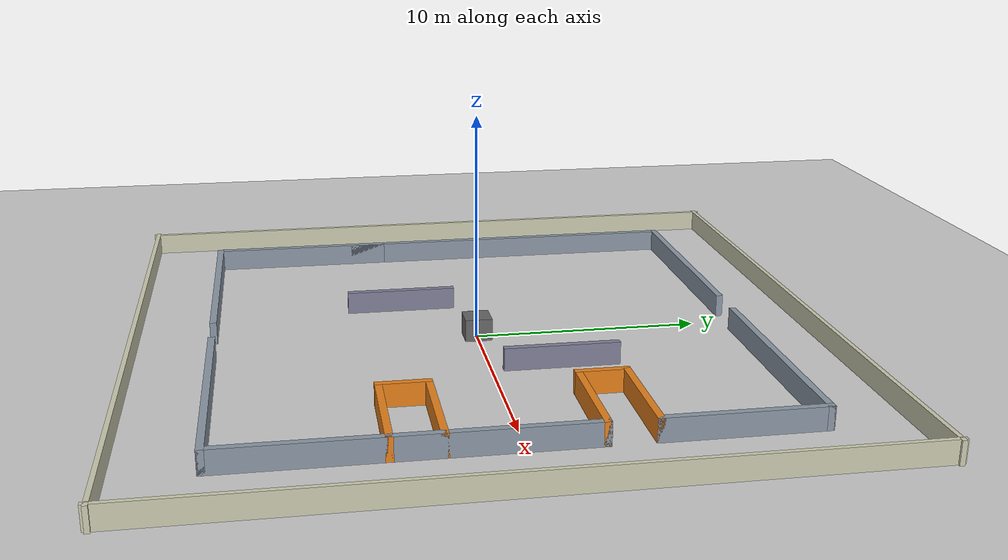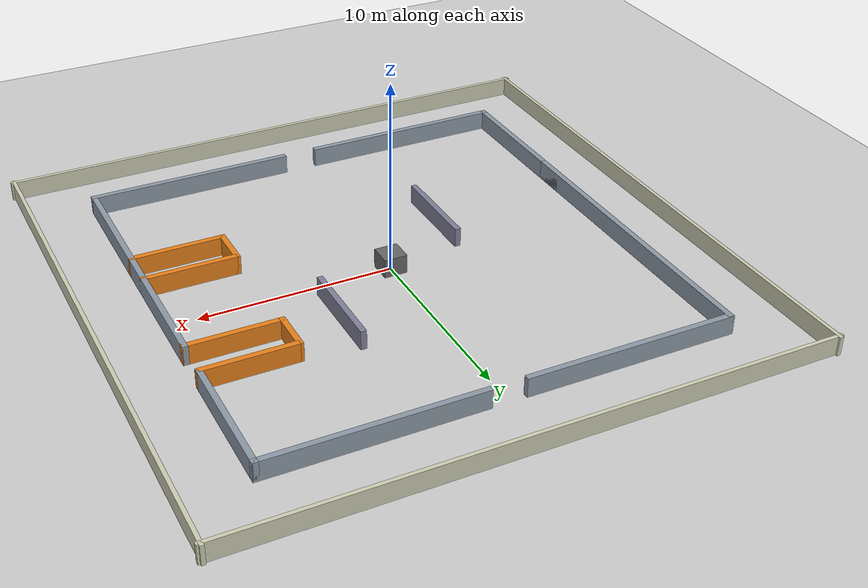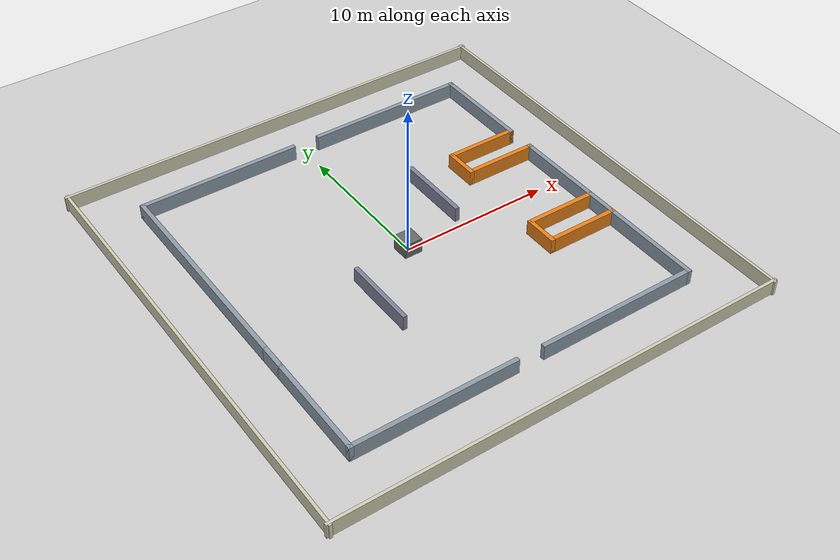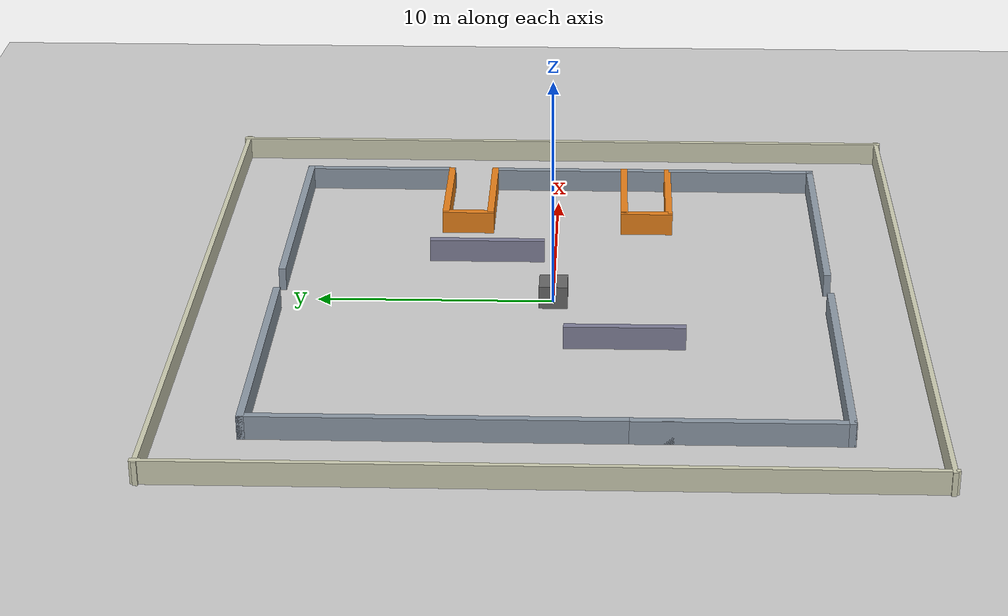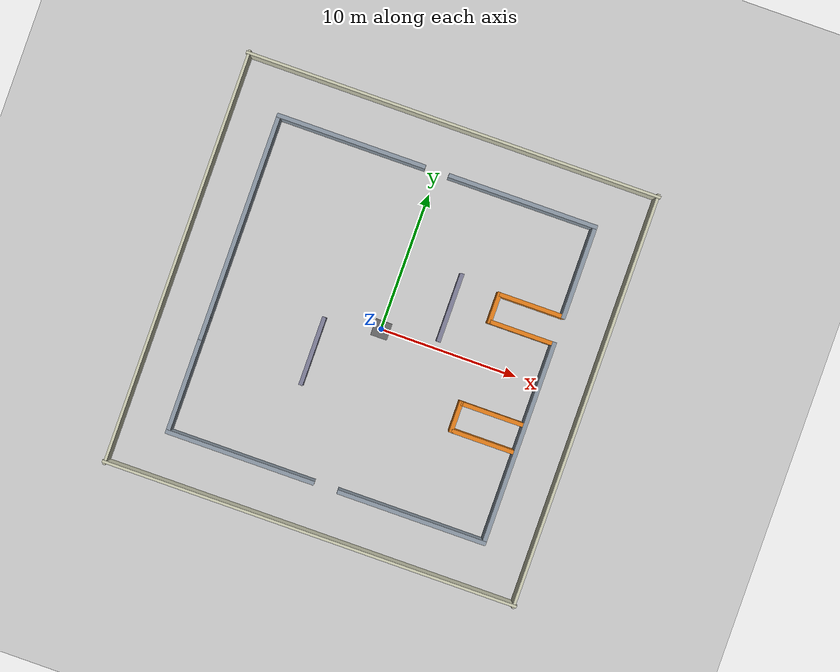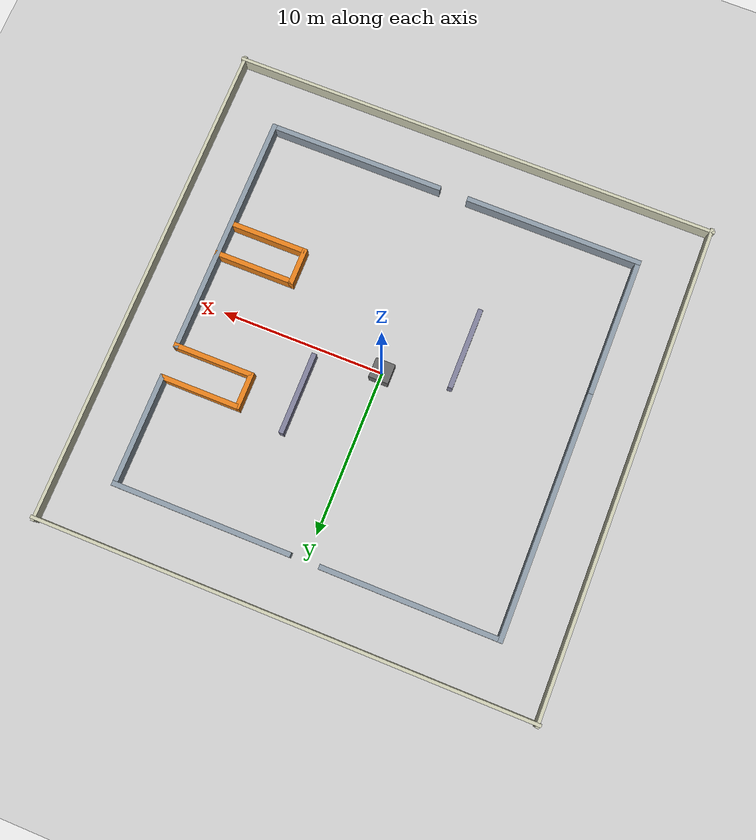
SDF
<?xml version="1.0"?>
<sdf version="1.6">
  <world name="loop_corridor">

    <include><uri>model://sun</uri></include>
    <include><uri>model://ground_plane</uri></include>

    <physics name="default_physics" type="ode">
      <max_step_size>0.005</max_step_size>
      <real_time_factor>1.0</real_time_factor>
    </physics>

    <!-- ═══════════ Outer shell 30m x 30m ═══════════ -->
    <model name="wall_n">
      <pose>0.000 15.000 0.500 0 0 0</pose>
      <static>true</static>
      <link name="link">
        <collision name="collision"><geometry><box><size>30.400 0.200 1.000</size></box></geometry></collision>
        <visual name="visual"><geometry><box><size>30.400 0.200 1.000</size></box></geometry>
          <material><ambient>0.8 0.8 0.7 1</ambient><diffuse>0.8 0.8 0.7 1</diffuse></material>
        </visual>
      </link>
    </model>
    <model name="wall_s">
      <pose>0.000 -15.000 0.500 0 0 0</pose>
      <static>true</static>
      <link name="link">
        <collision name="collision"><geometry><box><size>30.400 0.200 1.000</size></box></geometry></collision>
        <visual name="visual"><geometry><box><size>30.400 0.200 1.000</size></box></geometry>
          <material><ambient>0.8 0.8 0.7 1</ambient><diffuse>0.8 0.8 0.7 1</diffuse></material>
        </visual>
      </link>
    </model>
    <model name="wall_e">
      <pose>15.000 0.000 0.500 0 0 0</pose>
      <static>true</static>
      <link name="link">
        <collision name="collision"><geometry><box><size>0.200 30.400 1.000</size></box></geometry></collision>
        <visual name="visual"><geometry><box><size>0.200 30.400 1.000</size></box></geometry>
          <material><ambient>0.8 0.8 0.7 1</ambient><diffuse>0.8 0.8 0.7 1</diffuse></material>
        </visual>
      </link>
    </model>
    <model name="wall_w">
      <pose>-15.000 0.000 0.500 0 0 0</pose>
      <static>true</static>
      <link name="link">
        <collision name="collision"><geometry><box><size>0.200 30.400 1.000</size></box></geometry></collision>
        <visual name="visual"><geometry><box><size>0.200 30.400 1.000</size></box></geometry>
          <material><ambient>0.8 0.8 0.7 1</ambient><diffuse>0.8 0.8 0.7 1</diffuse></material>
        </visual>
      </link>
    </model>

    <!-- ═══════════ Central block walls (23m x 23m, ring corridor ~3.1m wide) ═══════════ -->
    <model name="cb_n_left">
      <pose>-6.300 11.600 0.500 0 0 0</pose>
      <static>true</static>
      <link name="link">
        <collision name="collision"><geometry><box><size>10.900 0.300 1.000</size></box></geometry></collision>
        <visual name="visual"><geometry><box><size>10.900 0.300 1.000</size></box></geometry>
          <material><ambient>0.55 0.6 0.65 1</ambient><diffuse>0.55 0.6 0.65 1</diffuse></material>
        </visual>
      </link>
    </model>
    <model name="cb_n_right">
      <pose>6.300 11.600 0.500 0 0 0</pose>
      <static>true</static>
      <link name="link">
        <collision name="collision"><geometry><box><size>10.900 0.300 1.000</size></box></geometry></collision>
        <visual name="visual"><geometry><box><size>10.900 0.300 1.000</size></box></geometry>
          <material><ambient>0.55 0.6 0.65 1</ambient><diffuse>0.55 0.6 0.65 1</diffuse></material>
        </visual>
      </link>
    </model>
    <model name="cb_s_left">
      <pose>-6.300 -11.600 0.500 0 0 0</pose>
      <static>true</static>
      <link name="link">
        <collision name="collision"><geometry><box><size>10.900 0.300 1.000</size></box></geometry></collision>
        <visual name="visual"><geometry><box><size>10.900 0.300 1.000</size></box></geometry>
          <material><ambient>0.55 0.6 0.65 1</ambient><diffuse>0.55 0.6 0.65 1</diffuse></material>
        </visual>
      </link>
    </model>
    <model name="cb_s_right">
      <pose>6.300 -11.600 0.500 0 0 0</pose>
      <static>true</static>
      <link name="link">
        <collision name="collision"><geometry><box><size>10.900 0.300 1.000</size></box></geometry></collision>
        <visual name="visual"><geometry><box><size>10.900 0.300 1.000</size></box></geometry>
          <material><ambient>0.55 0.6 0.65 1</ambient><diffuse>0.55 0.6 0.65 1</diffuse></material>
        </visual>
      </link>
    </model>
    <model name="cb_e_top">
      <pose>11.600 8.300 0.500 0 0 0</pose>
      <static>true</static>
      <link name="link">
        <collision name="collision"><geometry><box><size>0.300 6.900 1.000</size></box></geometry></collision>
        <visual name="visual"><geometry><box><size>0.300 6.900 1.000</size></box></geometry>
          <material><ambient>0.55 0.6 0.65 1</ambient><diffuse>0.55 0.6 0.65 1</diffuse></material>
        </visual>
      </link>
    </model>
    <model name="cb_e_bottom">
      <pose>11.600 -4.300 0.500 0 0 0</pose>
      <static>true</static>
      <link name="link">
        <collision name="collision"><geometry><box><size>0.300 14.900 1.000</size></box></geometry></collision>
        <visual name="visual"><geometry><box><size>0.300 14.900 1.000</size></box></geometry>
          <material><ambient>0.55 0.6 0.65 1</ambient><diffuse>0.55 0.6 0.65 1</diffuse></material>
        </visual>
      </link>
    </model>
    <model name="cb_w_top">
      <pose>-11.600 3.450 0.500 0 0 0</pose>
      <static>true</static>
      <link name="link">
        <collision name="collision"><geometry><box><size>0.300 16.600 1.000</size></box></geometry></collision>
        <visual name="visual"><geometry><box><size>0.300 16.600 1.000</size></box></geometry>
          <material><ambient>0.55 0.6 0.65 1</ambient><diffuse>0.55 0.6 0.65 1</diffuse></material>
        </visual>
      </link>
    </model>
    <model name="cb_w_bottom">
      <pose>-11.600 -7.450 0.500 0 0 0</pose>
      <static>true</static>
      <link name="link">
        <collision name="collision"><geometry><box><size>0.300 8.600 1.000</size></box></geometry></collision>
        <visual name="visual"><geometry><box><size>0.300 8.600 1.000</size></box></geometry>
          <material><ambient>0.55 0.6 0.65 1</ambient><diffuse>0.55 0.6 0.65 1</diffuse></material>
        </visual>
      </link>
    </model>

    <!-- ═══════════ Central room interior ═══════════ -->
    <model name="cr_pillar">
      <pose>0.000 0.000 0.500 0 0 0</pose>
      <static>true</static>
      <link name="link">
        <collision name="collision"><geometry><box><size>1.200 1.200 1.000</size></box></geometry></collision>
        <visual name="visual"><geometry><box><size>1.200 1.200 1.000</size></box></geometry>
          <material><ambient>0.4 0.4 0.4 1</ambient><diffuse>0.4 0.4 0.4 1</diffuse></material>
        </visual>
      </link>
    </model>
    <model name="cr_wing_w">
      <pose>-4.000 -3.000 0.500 0 0 0</pose>
      <static>true</static>
      <link name="link">
        <collision name="collision"><geometry><box><size>0.300 5.000 1.000</size></box></geometry></collision>
        <visual name="visual"><geometry><box><size>0.300 5.000 1.000</size></box></geometry>
          <material><ambient>0.5 0.5 0.6 1</ambient><diffuse>0.5 0.5 0.6 1</diffuse></material>
        </visual>
      </link>
    </model>
    <model name="cr_wing_e">
      <pose>4.000 3.000 0.500 0 0 0</pose>
      <static>true</static>
      <link name="link">
        <collision name="collision"><geometry><box><size>0.300 5.000 1.000</size></box></geometry></collision>
        <visual name="visual"><geometry><box><size>0.300 5.000 1.000</size></box></geometry>
          <material><ambient>0.5 0.5 0.6 1</ambient><diffuse>0.5 0.5 0.6 1</diffuse></material>
        </visual>
      </link>
    </model>

    <!-- ═══════════ Dead-end pockets (E/W), 1.7m entrances ═══════════ -->
    <model name="pocket_e_n">
      <pose>9.325 5.000 0.500 0 0 0</pose>
      <static>true</static>
      <link name="link">
        <collision name="collision"><geometry><box><size>4.850 0.300 1.000</size></box></geometry></collision>
        <visual name="visual"><geometry><box><size>4.850 0.300 1.000</size></box></geometry>
          <material><ambient>0.9 0.5 0.1 1</ambient><diffuse>0.9 0.5 0.1 1</diffuse></material>
        </visual>
      </link>
    </model>
    <model name="pocket_e_s">
      <pose>9.325 3.000 0.500 0 0 0</pose>
      <static>true</static>
      <link name="link">
        <collision name="collision"><geometry><box><size>4.850 0.300 1.000</size></box></geometry></collision>
        <visual name="visual"><geometry><box><size>4.850 0.300 1.000</size></box></geometry>
          <material><ambient>0.9 0.5 0.1 1</ambient><diffuse>0.9 0.5 0.1 1</diffuse></material>
        </visual>
      </link>
    </model>
    <model name="pocket_e_end">
      <pose>6.900 4.000 0.500 0 0 0</pose>
      <static>true</static>
      <link name="link">
        <collision name="collision"><geometry><box><size>0.300 2.300 1.000</size></box></geometry></collision>
        <visual name="visual"><geometry><box><size>0.300 2.300 1.000</size></box></geometry>
          <material><ambient>0.9 0.5 0.1 1</ambient><diffuse>0.9 0.5 0.1 1</diffuse></material>
        </visual>
      </link>
    </model>
    <model name="pocket_w_n">
      <pose>9.325 -5.000 0.500 0 0 0</pose>
      <static>true</static>
      <link name="link">
        <collision name="collision"><geometry><box><size>4.850 0.300 1.000</size></box></geometry></collision>
        <visual name="visual"><geometry><box><size>4.850 0.300 1.000</size></box></geometry>
          <material><ambient>0.9 0.5 0.1 1</ambient><diffuse>0.9 0.5 0.1 1</diffuse></material>
        </visual>
      </link>
    </model>
    <model name="pocket_w_s">
      <pose>9.325 -3.000 0.500 0 0 0</pose>
      <static>true</static>
      <link name="link">
        <collision name="collision"><geometry><box><size>4.850 0.300 1.000</size></box></geometry></collision>
        <visual name="visual"><geometry><box><size>4.850 0.300 1.000</size></box></geometry>
          <material><ambient>0.9 0.5 0.1 1</ambient><diffuse>0.9 0.5 0.1 1</diffuse></material>
        </visual>
      </link>
    </model>
    <model name="pocket_w_end">
      <pose>6.900 -4.000 0.500 0 0 0</pose>
      <static>true</static>
      <link name="link">
        <collision name="collision"><geometry><box><size>0.300 2.300 1.000</size></box></geometry></collision>
        <visual name="visual"><geometry><box><size>0.300 2.300 1.000</size></box></geometry>
          <material><ambient>0.9 0.5 0.1 1</ambient><diffuse>0.9 0.5 0.1 1</diffuse></material>
        </visual>
      </link>
    </model>

  </world>
</sdf>
